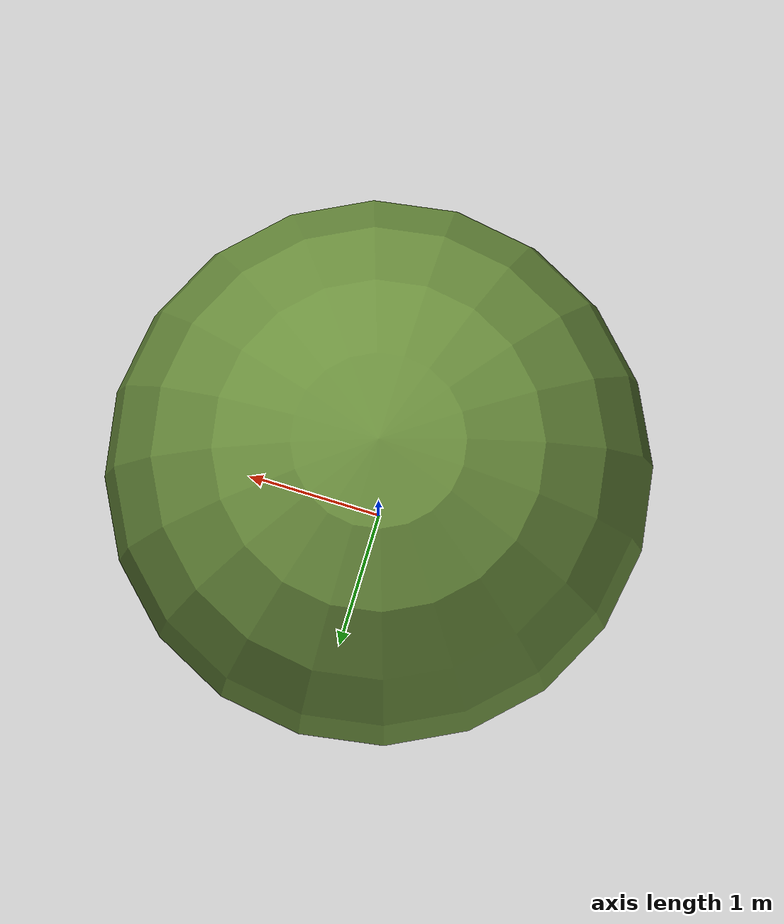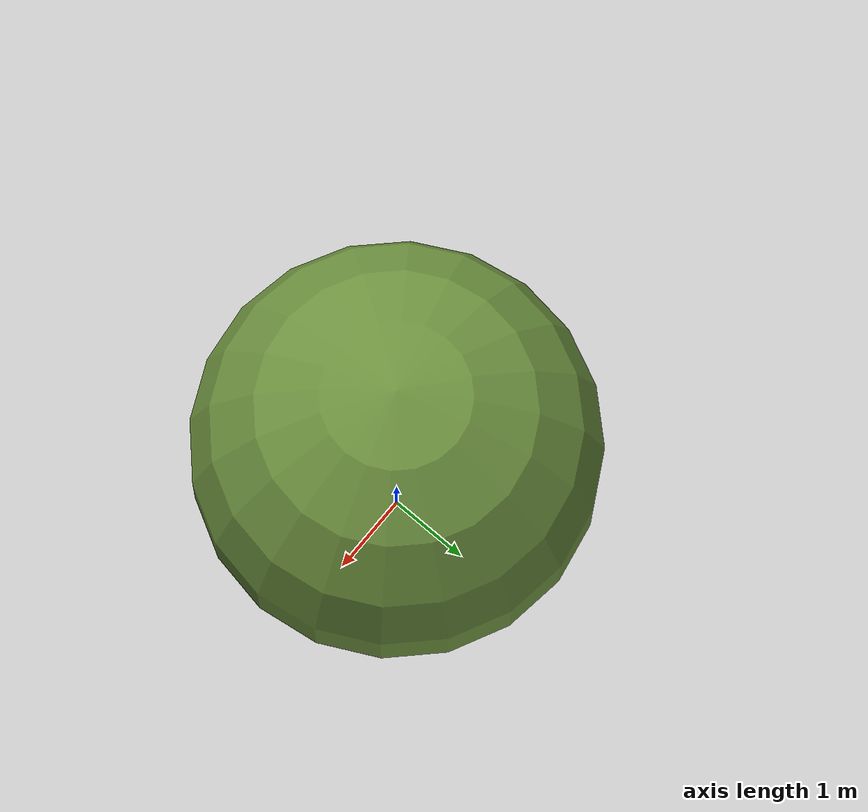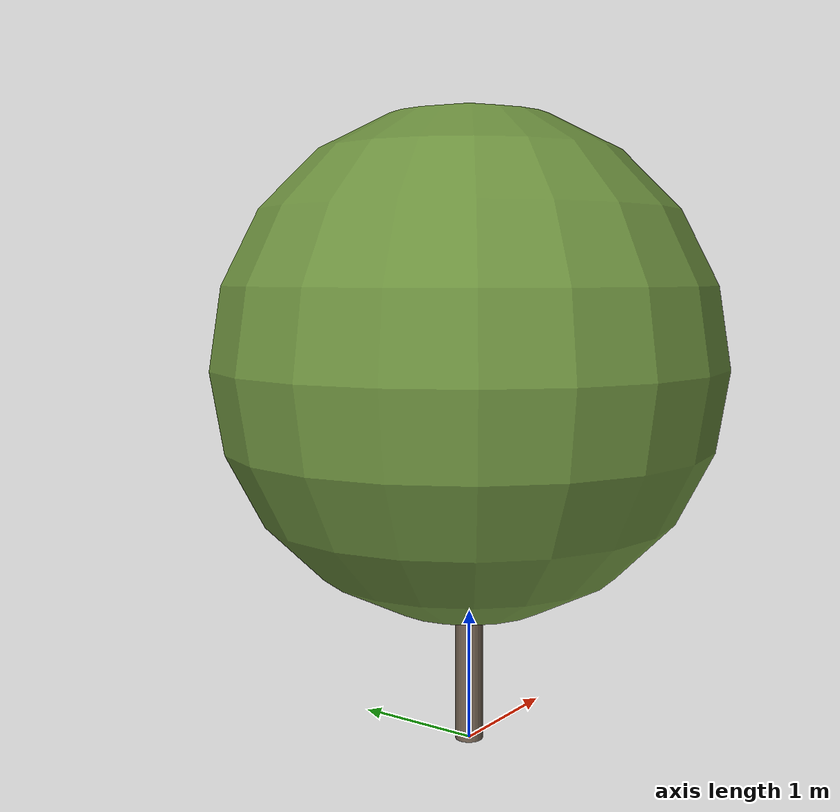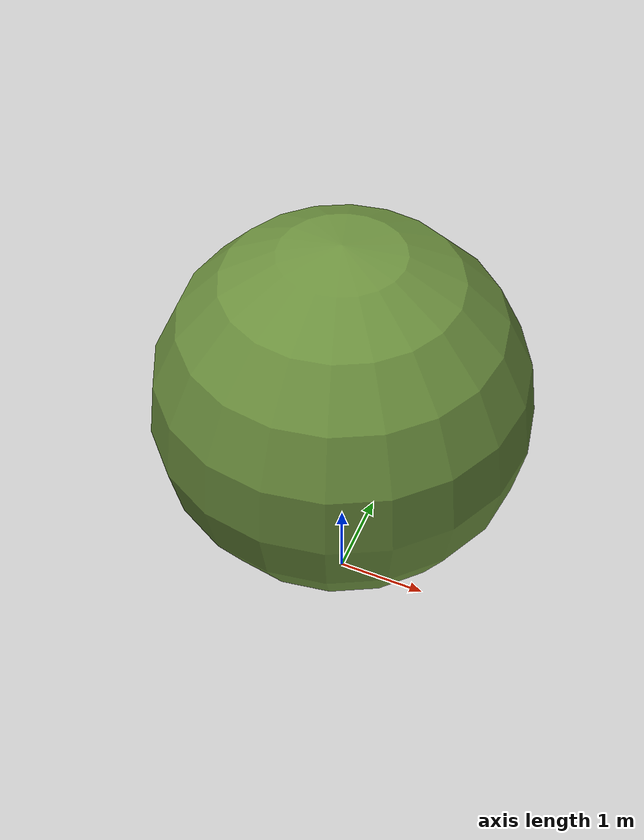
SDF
<?xml version="1.0" ?>
<sdf version="1.10">
  <model name="olivier_provence_17">
    <static>true</static>

    <!-- Tronc -->
    <link name="trunk">
      <pose>0 0 1.1503027752590609 0 0 0</pose>
      <visual name="trunk_visual">
        <geometry>
          <cylinder>
            <radius>0.10552188351670748</radius>
            <length>2.3006055505181218</length>
          </cylinder>
        </geometry>
        <material>
          <ambient>0.42 0.36 0.30 1</ambient>
          <diffuse>0.42 0.36 0.30 1</diffuse>
          <specular>0.1 0.1 0.1 1</specular>
        </material>
      </visual>
      <collision name="trunk_collision">
        <geometry>
          <cylinder>
            <radius>0.10552188351670748</radius>
            <length>2.3006055505181218</length>
          </cylinder>
        </geometry>
      </collision>
    </link>

    <!-- Feuillage -->
    <link name="crown">
      <pose>0 0 2.869744114647991 0 0 0</pose>
      <visual name="crown_visual">
        <geometry>
          <sphere>
              <radius>1.897128547099564</radius>
            </sphere>
        </geometry>
        <material>
          <ambient>0.42 0.56 0.24 1</ambient>
          <diffuse>0.42 0.56 0.24 1</diffuse>
          <specular>0.1 0.1 0.1 1</specular>
        </material>
      </visual>
      <collision name="crown_collision">
        <geometry>
          <sphere>
            <radius>1.5177028376796513</radius>
          </sphere>
        </geometry>
      </collision>
    </link>

    <!-- Joint tronc-feuillage -->
    <joint name="trunk_crown_joint" type="fixed">
      <parent>trunk</parent>
      <child>crown</child>
    </joint>

  </model>
</sdf>
